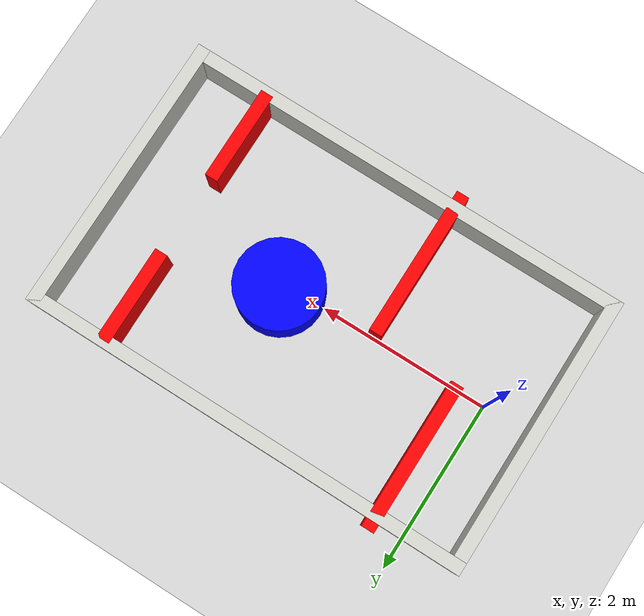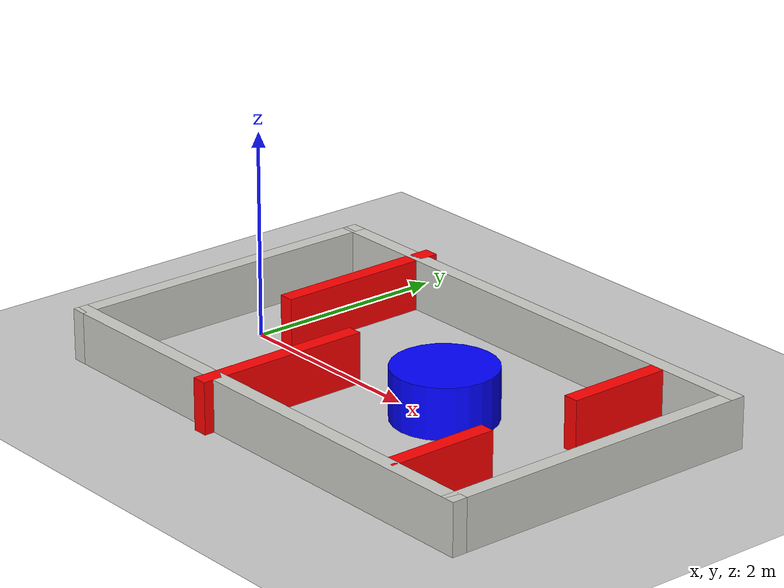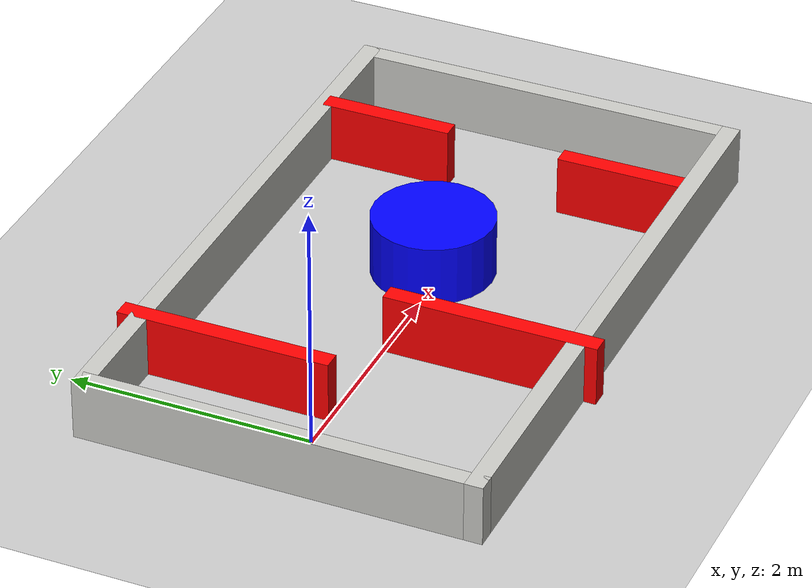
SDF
<sdf version="1.7">
 <world name="default">
  <light name="sun" type="directional">
   <pose>0 0 10 0 -0 0</pose>
   <diffuse>0.8 0.8 0.8 1</diffuse>
   <specular>0.2 0.2 0.2 1</specular>
   <attenuation>
    <range>1000</range>
    <constant>0.9</constant>
    <linear>0.01</linear>
    <quadratic>0.001</quadratic>
   </attenuation>
   <direction>-0.5 0.1 -0.9</direction>
   <spot><inner_angle>0</inner_angle><outer_angle>0</outer_angle><falloff>0</falloff></spot>
  </light>
  <model name="ground_plane">
   <static>1</static>
   <link name="link">
    <collision name="collision">
     <geometry><plane><normal>0 0 1</normal><size>100 100</size></plane></geometry>
     <surface><friction><ode><mu>100</mu><mu2>50</mu2></ode></friction></surface>
    </collision>
    <visual name="visual">
     <cast_shadows>0</cast_shadows>
     <geometry><plane><normal>0 0 1</normal><size>100 100</size></plane></geometry>
     <material>
      <script><uri>file://media/materials/scripts/gazebo.material</uri><name>Gazebo/Grey</name></script>
     </material>
    </visual>
   </link>
  </model>
  <gravity>0 0 -9.8</gravity>
  <magnetic_field>6e-06 2.3e-05 -4.2e-05</magnetic_field>
  <atmosphere type="adiabatic"/>
  <physics type="ode">
   <max_step_size>0.001</max_step_size>
   <real_time_factor>1</real_time_factor>
   <real_time_update_rate>1000</real_time_update_rate>
  </physics>
  <scene><ambient>0.4 0.4 0.4 1</ambient><background>0.7 0.7 0.7 1</background><shadows>1</shadows></scene>
  <spherical_coordinates>
   <surface_model>EARTH_WGS84</surface_model>
   <latitude_deg>0</latitude_deg>
   <longitude_deg>0</longitude_deg>
   <elevation>0</elevation>
   <heading_deg>0</heading_deg>
  </spherical_coordinates>
  <model name="walls">
   <pose>2.5 0 0 0 -0 0</pose>
   <link name="Wall_0">
    <collision name="Wall_0_Collision">
     <geometry><box><size>5.3 0.15 0.5</size></box></geometry>
     <pose>-0.5 0.5 0.25 0 -0 0</pose>
    </collision>
    <visual name="Wall_0_Visual">
     <pose>-0.5 0.5 0.25 0 -0 0</pose>
     <geometry><box><size>5.3 0.15 0.5</size></box></geometry>
     <material>
      <script><uri>file://media/materials/scripts/gazebo.material</uri><name>Gazebo/CeilingTiled</name></script>
      <ambient>1 0.5 0 1</ambient>
     </material>
     <meta><layer>0</layer></meta>
    </visual>
    <pose>0 1.075 0 0 -0 0</pose>
   </link>
   <link name="Wall_1">
    <collision name="Wall_1_Collision">
     <geometry><box><size>3.3 0.15 0.5</size></box></geometry>
     <pose>0 -1 0.25 0 -0 0</pose>
     <surface>Wall_2</surface>
    </collision>
    <visual name="Wall_1_Visual">
     <pose>0 -1 0.25 0 -0 0</pose>
     <geometry><box><size>3.3 0.15 0.5</size></box></geometry>
     <material>
      <script><uri>file://media/materials/scripts/gazebo.material</uri><name>Gazebo/CeilingTiled</name></script>
      <ambient>1 0.5 0 1</ambient>
     </material>
     <meta><layer>0</layer></meta>
    </visual>
    <pose>3.075 0 0 0 -0 -1.5708</pose>
   </link>
   <link name="Wall_2">
    <collision name="Wall_2_Collision">
     <geometry><box><size>5.3 0.15 0.5</size></box></geometry>
     <pose>0.5 0.5 0.25 0 -0 0</pose>
    </collision>
    <visual name="Wall_2_Visual">
     <pose>0.5 0.5 0.25 0 -0 0</pose>
     <geometry><box><size>5.3 0.15 0.5</size></box></geometry>
     <material>
      <script><uri>file://media/materials/scripts/gazebo.material</uri><name>Gazebo/CeilingTiled</name></script>
      <ambient>1 0.5 0 1</ambient>
     </material>
     <meta><layer>0</layer></meta>
    </visual>
    <pose>0 -1.075 0 0 -0 3.14159</pose>
   </link>
   <link name="Wall_3">
    <collision name="Wall_3_Collision">
     <geometry><box><size>3.3 0.15 0.5</size></box></geometry>
     <pose>0 0 0.25 0 -0 0</pose>
    </collision>
    <visual name="Wall_3_Visual">
     <pose>0 0 0.25 0 -0 0</pose>
     <geometry><box><size>3.3 0.15 0.5</size></box></geometry>
     <material>
      <script><uri>file://media/materials/scripts/gazebo.material</uri><name>Gazebo/CeilingTiled</name></script>
      <ambient>1 0.5 0 1</ambient>
     </material>
     <meta><layer>0</layer></meta>
    </visual>
    <pose>-3.075 0 0 0 -0 1.5708</pose>
   </link>
   <static>1</static>
  </model>
  <model name="Obstacles">
   <link name="link_1">
    <inertial>
     <mass>1</mass>
     <inertia>
      <ixx>0.166667</ixx>
      <ixy>0</ixy>
      <ixz>0</ixz>
      <iyy>0.166667</iyy>
      <iyz>0</iyz>
      <izz>0.166667</izz>
     </inertia>
     <pose>-0.7 0.5 0 0 -0 0</pose>
    </inertial>
    <pose>-1.14167 0.341667 0 0 -0 0</pose>
    <visual name="visual">
     <pose>-0.7 0.5 0 0 -0 0</pose>
     <geometry><box><size>0.15 1.75 0.5</size></box></geometry>
     <material>
      <lighting>1</lighting>
      <script><uri>file://media/materials/scripts/gazebo.material</uri><name>Gazebo/Grey</name></script>
      <shader type="pixel"><normal_map>__default__</normal_map></shader>
      <ambient>0.1 0 0 1</ambient>
      <diffuse>1 0 0 1</diffuse>
      <specular>0.5 0.5 0.5 1</specular>
      <emissive>0 0 0 1</emissive>
     </material>
    </visual>
    <collision name="collision">
     <pose>-0.7 0.5 0 0 -0 0</pose>
     <geometry><box><size>0.15 1.75 0.5</size></box></geometry>
     <surface>
      <friction>
       <ode><mu>1</mu><mu2>1</mu2><fdir1>0 0 0</fdir1><slip1>0</slip1><slip2>0</slip2></ode>
       <torsional>
        <coefficient>1</coefficient>
        <patch_radius>0</patch_radius>
        <surface_radius>0</surface_radius>
        <use_patch_radius>1</use_patch_radius>
        <ode><slip>0</slip></ode>
       </torsional>
      </friction>
      <bounce><restitution_coefficient>0</restitution_coefficient><threshold>1e+06</threshold></bounce>
      <contact>
       <collide_without_contact>0</collide_without_contact>
       <collide_without_contact_bitmask>1</collide_without_contact_bitmask>
       <collide_bitmask>1</collide_bitmask>
       <ode>
        <soft_cfm>0</soft_cfm>
        <soft_erp>0.2</soft_erp>
        <kp>1e+13</kp>
        <kd>1</kd>
        <max_vel>0.01</max_vel>
        <min_depth>0</min_depth>
       </ode>
       <bullet>
        <split_impulse>1</split_impulse>
        <split_impulse_penetration_threshold>-0.01</split_impulse_penetration_threshold>
        <soft_cfm>0</soft_cfm>
        <soft_erp>0.2</soft_erp>
        <kp>1e+13</kp>
        <kd>1</kd>
       </bullet>
      </contact>
     </surface>
    </collision>
   </link>
   <link name="link_1_clone">
    <inertial>
     <mass>1</mass>
     <inertia>
      <ixx>0.166667</ixx>
      <ixy>0</ixy>
      <ixz>0</ixz>
      <iyy>0.166667</iyy>
      <iyz>0</iyz>
      <izz>0.166667</izz>
     </inertia>
     <pose>-0.7 -0.5 0 0 -0 0</pose>
    </inertial>
    <pose>-0.141667 -0.408333 0 0 -0 0</pose>
    <visual name="visual">
     <pose>-0.7 -0.5 0 0 -0 0</pose>
     <geometry><box><size>0.15 1.75 0.5</size></box></geometry>
     <material>
      <lighting>1</lighting>
      <script><uri>file://media/materials/scripts/gazebo.material</uri><name>Gazebo/Grey</name></script>
      <shader type="pixel"><normal_map>__default__</normal_map></shader>
      <ambient>0.1 0 0 1</ambient>
      <diffuse>1 0 0 1</diffuse>
      <specular>0.5 0.5 0.5 1</specular>
      <emissive>0 0 0 1</emissive>
     </material>
    </visual>
    <collision name="collision">
     <pose>-0.7 -0.5 0 0 -0 0</pose>
     <geometry><box><size>0.15 1.75 0.5</size></box></geometry>
     <surface>
      <friction>
       <ode><mu>1</mu><mu2>1</mu2><fdir1>0 0 0</fdir1><slip1>0</slip1><slip2>0</slip2></ode>
       <torsional>
        <coefficient>1</coefficient>
        <patch_radius>0</patch_radius>
        <surface_radius>0</surface_radius>
        <use_patch_radius>1</use_patch_radius>
        <ode><slip>0</slip></ode>
       </torsional>
      </friction>
      <bounce><restitution_coefficient>0</restitution_coefficient><threshold>1e+06</threshold></bounce>
      <contact>
       <collide_without_contact>0</collide_without_contact>
       <collide_without_contact_bitmask>1</collide_without_contact_bitmask>
       <collide_bitmask>1</collide_bitmask>
       <ode>
        <soft_cfm>0</soft_cfm>
        <soft_erp>0.2</soft_erp>
        <kp>1e+13</kp>
        <kd>1</kd>
        <max_vel>0.01</max_vel>
        <min_depth>0</min_depth>
       </ode>
       <bullet>
        <split_impulse>1</split_impulse>
        <split_impulse_penetration_threshold>-0.01</split_impulse_penetration_threshold>
        <soft_cfm>0</soft_cfm>
        <soft_erp>0.2</soft_erp>
        <kp>1e+13</kp>
        <kd>1</kd>
       </bullet>
      </contact>
     </surface>
    </collision>
   </link>
   <link name="link_3">
    <inertial>
     <mass>1</mass>
     <inertia><ixx>0.145833</ixx><ixy>0</ixy><ixz>0</ixz><iyy>0.145833</iyy><iyz>0</iyz><izz>0.125</izz></inertia>
     <pose>-1 0 0 0 -0 0</pose>
    </inertial>
    <pose>1.28333 0.066667 0 0 -0 0</pose>
    <visual name="visual">
     <pose>-1 0 0 0 -0 0</pose>
     <geometry><cylinder><radius>0.5</radius><length>0.5</length></cylinder></geometry>
     <material>
      <lighting>1</lighting>
      <script><uri>file://media/materials/scripts/gazebo.material</uri><name>Gazebo/Grey</name></script>
      <shader type="pixel"><normal_map>__default__</normal_map></shader>
      <ambient>0.1 0 0 1</ambient>
      <diffuse>0 0 1 1</diffuse>
      <specular>0.5 0.5 0.5 1</specular>
      <emissive>0 0 0 1</emissive>
     </material>
    </visual>
    <collision name="collision">
     <pose>-1 0 0 0 -0 0</pose>
     <geometry><cylinder><radius>0.5</radius><length>0.5</length></cylinder></geometry>
     <surface>
      <friction>
       <ode><mu>1</mu><mu2>1</mu2><fdir1>0 0 0</fdir1><slip1>0</slip1><slip2>0</slip2></ode>
       <torsional>
        <coefficient>1</coefficient>
        <patch_radius>0</patch_radius>
        <surface_radius>0</surface_radius>
        <use_patch_radius>1</use_patch_radius>
        <ode><slip>0</slip></ode>
       </torsional>
      </friction>
      <bounce><restitution_coefficient>0</restitution_coefficient><threshold>1e+06</threshold></bounce>
      <contact>
       <collide_without_contact>0</collide_without_contact>
       <collide_without_contact_bitmask>1</collide_without_contact_bitmask>
       <collide_bitmask>1</collide_bitmask>
       <ode>
        <soft_cfm>0</soft_cfm>
        <soft_erp>0.2</soft_erp>
        <kp>1e+13</kp>
        <kd>1</kd>
        <max_vel>0.01</max_vel>
        <min_depth>0</min_depth>
       </ode>
       <bullet>
        <split_impulse>1</split_impulse>
        <split_impulse_penetration_threshold>-0.01</split_impulse_penetration_threshold>
        <soft_cfm>0</soft_cfm>
        <soft_erp>0.2</soft_erp>
        <kp>1e+13</kp>
        <kd>1</kd>
       </bullet>
      </contact>
     </surface>
    </collision>
   </link>
   <link name="link_2_clone">
    <inertial>
     <mass>1</mass>
     <inertia>
      <ixx>0.166667</ixx>
      <ixy>0</ixy>
      <ixz>0</ixz>
      <iyy>0.166667</iyy>
      <iyz>0</iyz>
      <izz>0.166667</izz>
     </inertia>
     <pose>1.65 -0.65 0 0 -0 0</pose>
    </inertial>
    <pose>-0.141667 -0.408333 0 0 -0 0</pose>
    <visual name="visual">
     <pose>1.65 -0.65 0 0 -0 0</pose>
     <geometry><box><size>0.15 1.1 0.5</size></box></geometry>
     <material>
      <lighting>1</lighting>
      <script><uri>file://media/materials/scripts/gazebo.material</uri><name>Gazebo/Grey</name></script>
      <shader type="pixel"><normal_map>__default__</normal_map></shader>
      <ambient>0.1 0 0 1</ambient>
      <diffuse>1 0 0 1</diffuse>
      <specular>0.5 0.5 0.5 1</specular>
      <emissive>0 0 0 1</emissive>
     </material>
    </visual>
    <collision name="collision">
     <pose>1.65 -0.65 0 0 -0 0</pose>
     <geometry><box><size>0.15 1.1 0.5</size></box></geometry>
     <surface>
      <friction>
       <ode><mu>1</mu><mu2>1</mu2><fdir1>0 0 0</fdir1><slip1>0</slip1><slip2>0</slip2></ode>
       <torsional>
        <coefficient>1</coefficient>
        <patch_radius>0</patch_radius>
        <surface_radius>0</surface_radius>
        <use_patch_radius>1</use_patch_radius>
        <ode><slip>0</slip></ode>
       </torsional>
      </friction>
      <bounce><restitution_coefficient>0</restitution_coefficient><threshold>1e+06</threshold></bounce>
      <contact>
       <collide_without_contact>0</collide_without_contact>
       <collide_without_contact_bitmask>1</collide_without_contact_bitmask>
       <collide_bitmask>1</collide_bitmask>
       <ode>
        <soft_cfm>0</soft_cfm>
        <soft_erp>0.2</soft_erp>
        <kp>1e+13</kp>
        <kd>1</kd>
        <max_vel>0.01</max_vel>
        <min_depth>0</min_depth>
       </ode>
       <bullet>
        <split_impulse>1</split_impulse>
        <split_impulse_penetration_threshold>-0.01</split_impulse_penetration_threshold>
        <soft_cfm>0</soft_cfm>
        <soft_erp>0.2</soft_erp>
        <kp>1e+13</kp>
        <kd>1</kd>
       </bullet>
      </contact>
     </surface>
    </collision>
   </link>
   <link name="link_2">
    <inertial>
     <mass>1</mass>
     <inertia>
      <ixx>0.166667</ixx>
      <ixy>0</ixy>
      <ixz>0</ixz>
      <iyy>0.166667</iyy>
      <iyz>0</iyz>
      <izz>0.166667</izz>
     </inertia>
     <pose>2.65 0.65 0 0 -0 0</pose>
    </inertial>
    <pose>-1.14167 0.341667 0 0 -0 0</pose>
    <visual name="visual">
     <pose>2.65 0.65 0 0 -0 0</pose>
     <geometry><box><size>0.15 1.1 0.5</size></box></geometry>
     <material>
      <lighting>1</lighting>
      <script><uri>file://media/materials/scripts/gazebo.material</uri><name>Gazebo/Grey</name></script>
      <shader type="pixel"><normal_map>__default__</normal_map></shader>
      <ambient>0.1 0 0 1</ambient>
      <diffuse>1 0 0 1</diffuse>
      <specular>0.5 0.5 0.5 1</specular>
      <emissive>0 0 0 1</emissive>
     </material>
    </visual>
    <collision name="collision">
     <pose>2.65 0.65 0 0 -0 0</pose>
     <geometry><box><size>0.15 1.1 0.5</size></box></geometry>
     <surface>
      <friction>
       <ode><mu>1</mu><mu2>1</mu2><fdir1>0 0 0</fdir1><slip1>0</slip1><slip2>0</slip2></ode>
       <torsional>
        <coefficient>1</coefficient>
        <patch_radius>0</patch_radius>
        <surface_radius>0</surface_radius>
        <use_patch_radius>1</use_patch_radius>
        <ode><slip>0</slip></ode>
       </torsional>
      </friction>
      <bounce><restitution_coefficient>0</restitution_coefficient><threshold>1e+06</threshold></bounce>
      <contact>
       <collide_without_contact>0</collide_without_contact>
       <collide_without_contact_bitmask>1</collide_without_contact_bitmask>
       <collide_bitmask>1</collide_bitmask>
       <ode>
        <soft_cfm>0</soft_cfm>
        <soft_erp>0.2</soft_erp>
        <kp>1e+13</kp>
        <kd>1</kd>
        <max_vel>0.01</max_vel>
        <min_depth>0</min_depth>
       </ode>
       <bullet>
        <split_impulse>1</split_impulse>
        <split_impulse_penetration_threshold>-0.01</split_impulse_penetration_threshold>
        <soft_cfm>0</soft_cfm>
        <soft_erp>0.2</soft_erp>
        <kp>1e+13</kp>
        <kd>1</kd>
       </bullet>
      </contact>
     </surface>
    </collision>
   </link>
   <static>0</static>
   <pose>2.21667 0.033333 0.25 0 -0 0</pose>
  </model>
 </world>
</sdf>
